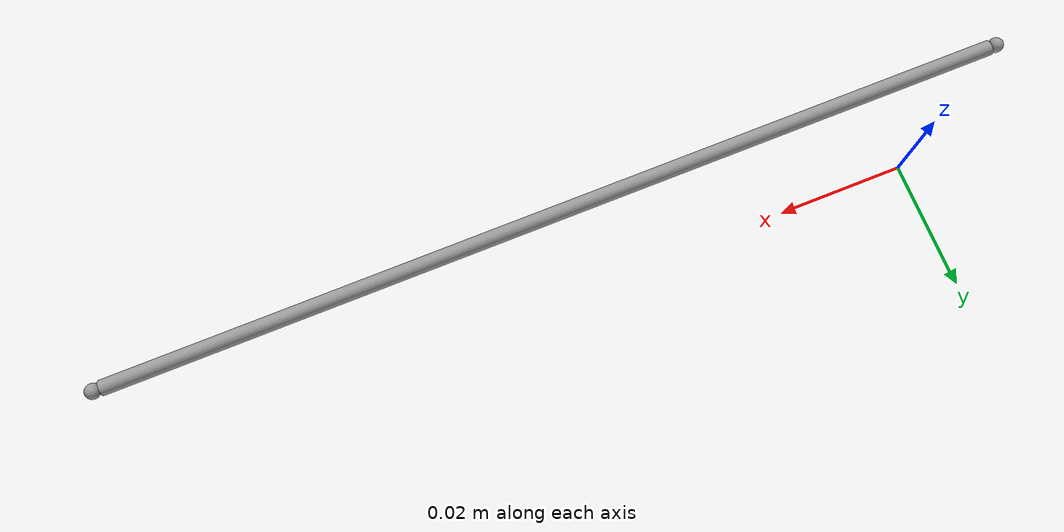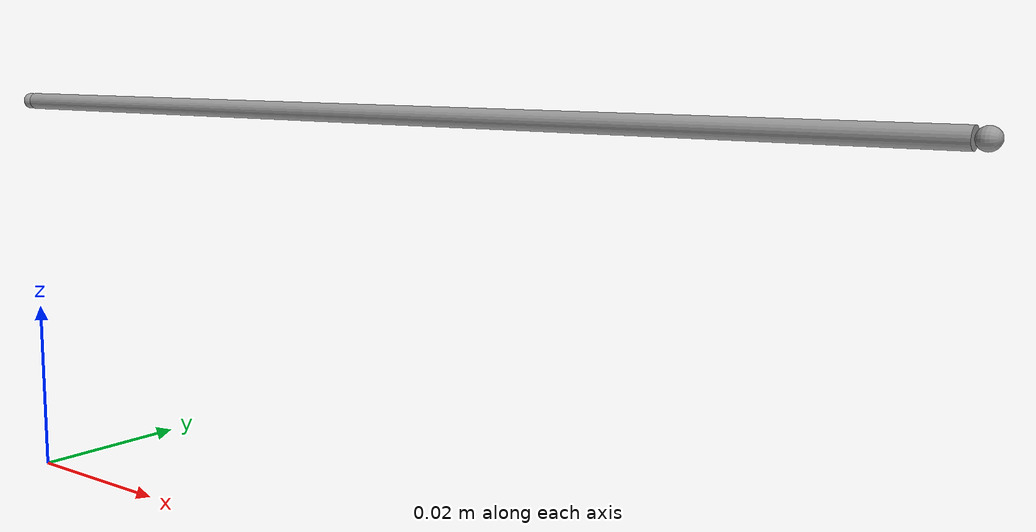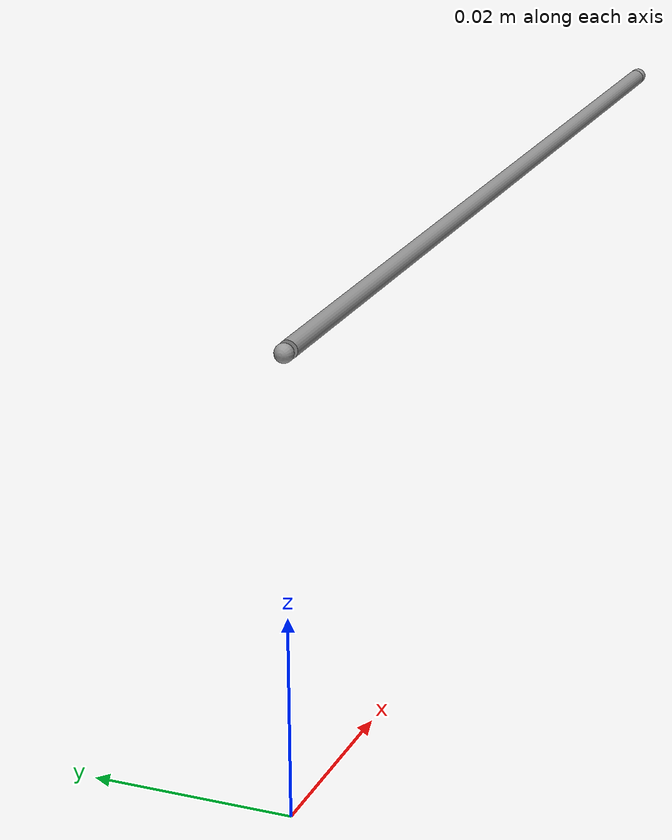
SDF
<?xml version="1.0" ?>
<sdf version='1.7'>
<model name="cable_modelA">
  <link name="segment_1_sphere">
    <pose>0 0 0.045 1.57 -0 -1.57</pose>
    <inertial>
      <pose>0 0 0 0 -0 0</pose>
      <mass>0.0025</mass>
      <inertia>
        <ixx>0.000001</ixx>
        <ixy>0</ixy>
        <ixz>0</ixz>
        <iyy>0.000001</iyy>
        <iyz>0</iyz>
        <izz>0.000001</izz>
      </inertia>
    </inertial>
    <collision name="segment_1_sphere_collision">
      <pose>0 0 0 0 -0 0</pose>
      <geometry>
        <sphere>
          <radius>0.0009</radius>
        </sphere>
      </geometry>
      <surface>
        <friction>
          <ode>
            <mu>0.001</mu>
            <mu2>0.001</mu2>
          </ode>
        </friction>
      </surface>
    </collision>
    <visual name="segment_1_sphere_visual">
      <pose>0 0 0 0 -0 0</pose>
      <geometry>
        <sphere>
          <radius>0.0009</radius>
        </sphere>
      </geometry>
      <material>
        <script>
          <name>Gazebo/Gray</name>
          <uri>file://media/materials/scripts/gazebo.material</uri>
        </script>
      </material>
    </visual>
    <self_collide>1</self_collide>
  </link>
  <joint name="segment_1_sphere_to_cylinder" type="ball">
    <pose relative_to="segment_1_sphere">0 0 0 0 -0 0</pose>
    <parent>segment_1_cylinder</parent>
    <child>segment_1_sphere</child>
    <axis>
      <xyz>1 0 0</xyz>
      <limit>
        <lower>-3.14</lower>
        <upper>3.14</upper>
        <effort>10</effort>
        <velocity>3</velocity>
      </limit>
      <dynamics>
        <damping>0.1</damping>
        <friction>0</friction>
        <spring_reference>0</spring_reference>
        <spring_stiffness>0</spring_stiffness>
      </dynamics>
    </axis>
  </joint>
  <link name="segment_1_cylinder">
    <pose relative_to="segment_1_sphere_to_cylinder">0 0 0 0 -0 0</pose>
    <inertial>
      <pose>0 0 -0.05445 0 -0 0</pose>
      <mass>0.025</mass>
      <inertia>
        <ixx>0.00001</ixx>
        <ixy>0</ixy>
        <ixz>0</ixz>
        <iyy>0.00001</iyy>
        <iyz>0</iyz>
        <izz>0.00001</izz>
      </inertia>
    </inertial>
    <collision name="segment_1_cylinder_collision">
      <pose>0 0 -0.05445 0 -0 0</pose>
      <geometry>
        <cylinder>
          <length>0.10709999999999999</length>
          <radius>0.0009</radius>
        </cylinder>
      </geometry>
      <surface>
        <friction>
          <ode>
            <mu>0.001</mu>
            <mu2>0.001</mu2>
          </ode>
        </friction>
        <contact>
          <ode>
            <soft_cfm>0.5</soft_cfm>
            <soft_erp>0.2</soft_erp>
            <kp>1500</kp>
            <kd>0.5</kd>
            <max_vel>0.2</max_vel>
            <min_depth>0.005</min_depth>
          </ode>
        </contact>
      </surface>
    </collision>
    <visual name="segment_1_cylinder_visual">
      <pose>0 0 -0.05445 0 -0 0</pose>
      <geometry>
        <cylinder>
          <length>0.10709999999999999</length>
          <radius>0.0009</radius>
        </cylinder>
      </geometry>
      <material>
        <script>
          <name>Gazebo/Gray</name>
          <uri>file://media/materials/scripts/gazebo.material</uri>
        </script>
      </material>
    </visual>
    <self_collide>1</self_collide>
  </link>
  <joint name="joint_end_sphere" type="ball">
    <pose relative_to="segment_1_cylinder">0 0 -0.1089 0 -0 0</pose>
    <parent>segment_1_cylinder</parent>
    <child>end_sphere</child>
    <axis>
      <xyz>0 1 0</xyz>
      <limit>
        <lower>-1.57</lower>
        <upper>1.57</upper>
        <effort>10</effort>
        <velocity>3</velocity>
      </limit>
      <dynamics>
        <damping>0.1</damping>
        <friction>0</friction>
        <spring_reference>0</spring_reference>
        <spring_stiffness>0</spring_stiffness>
      </dynamics>
    </axis>
  </joint>
  <link name="end_sphere">
    <pose relative_to="joint_end_sphere">0 0 0 0 -0 0</pose>
    <inertial>
      <pose>0 0 0 0 -0 0</pose>
      <mass>0.0025</mass>
      <inertia>
        <ixx>0.000001</ixx>
        <ixy>0</ixy>
        <ixz>0</ixz>
        <iyy>0.000001</iyy>
        <iyz>0</iyz>
        <izz>0.000001</izz>
      </inertia>
    </inertial>
    <collision name="end_sphere_collision">
      <pose>0 0 0 0 -0 0</pose>
      <geometry>
        <sphere>
          <radius>0.0009</radius>
        </sphere>
      </geometry>
      <surface>
        <friction>
          <ode>
            <mu>0.001</mu>
            <mu2>0.001</mu2>
          </ode>
        </friction>
      </surface>
    </collision>
    <visual name="end_sphere_visual">
      <pose>0 0 0 0 -0 0</pose>
      <geometry>
        <sphere>
          <radius>0.0009</radius>
        </sphere>
      </geometry>
      <material>
        <script>
          <name>Gazebo/Gray</name>
          <uri>file://media/materials/scripts/gazebo.material</uri>
        </script>
      </material>
    </visual>
  </link>
  <self_collide>1</self_collide>
</model>
</sdf>
